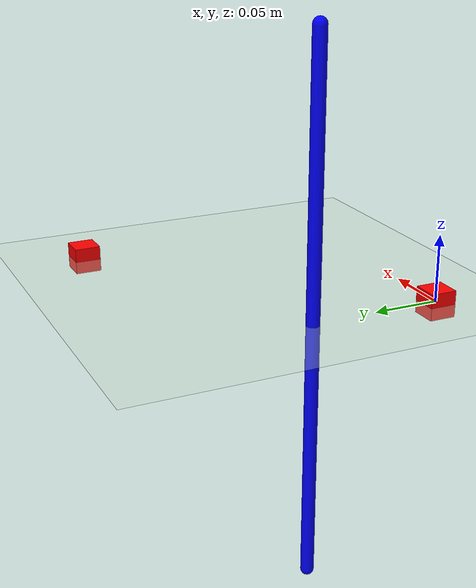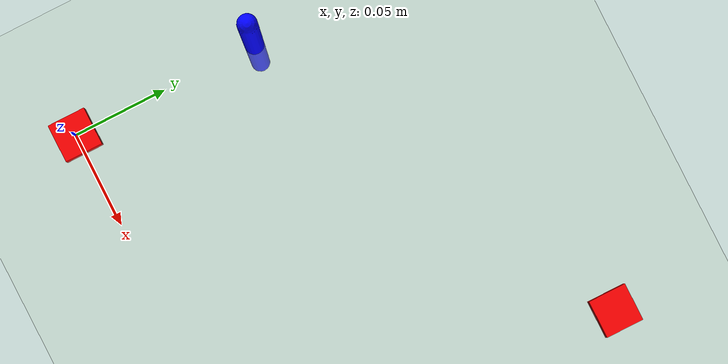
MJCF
<mujoco model="cable_system">
    <compiler angle="radian" inertiafromgeom="true"/>
    <default>
        <geom friction="0.8" density="1000"/>
        <joint armature="0.01" damping="1"/>
    </default>

    <!-- World Body -->
    <worldbody>
        <!-- Ground -->
        <geom type="plane" size="5 5 0.1" rgba="0.8 0.9 0.8 1"/>

        <!-- Rigid Body 0 -->
        <body name="body0" pos="0 0 0">
            <joint name="free0" type="free"/>
            <geom type="box" size="0.01 0.01 0.01" rgba="1 0 0 1"/>
        </body>

        <!-- Cable 1 (Segmented Chain) -->
        <body name="cable1_segment0" pos="0 0 0">
            <joint name="cable1_joint0" type="hinge" axis="0 1 0"/>
            <geom type="capsule" size="0.005 0.2" pos="0 0.1 0" rgba="0 0 1 1"/>
        </body>
        <!-- Repeat for additional segments of the cable -->

        <!-- Rigid Body 1 -->
        <body name="body1" pos="0.2 0.2 0">
            <joint name="free1" type="free"/>
            <geom type="box" size="0.01 0.01 0.01" rgba="1 0 0 1"/>
        </body>
    </worldbody>

    <!-- Actuators -->
    <!-- Apply a force motor on the joint between the body and cable -->
    <actuator>
        <motor name="pull_motor" joint="free1" ctrlrange="-10 10" gear="1" />
    </actuator>
</mujoco>
